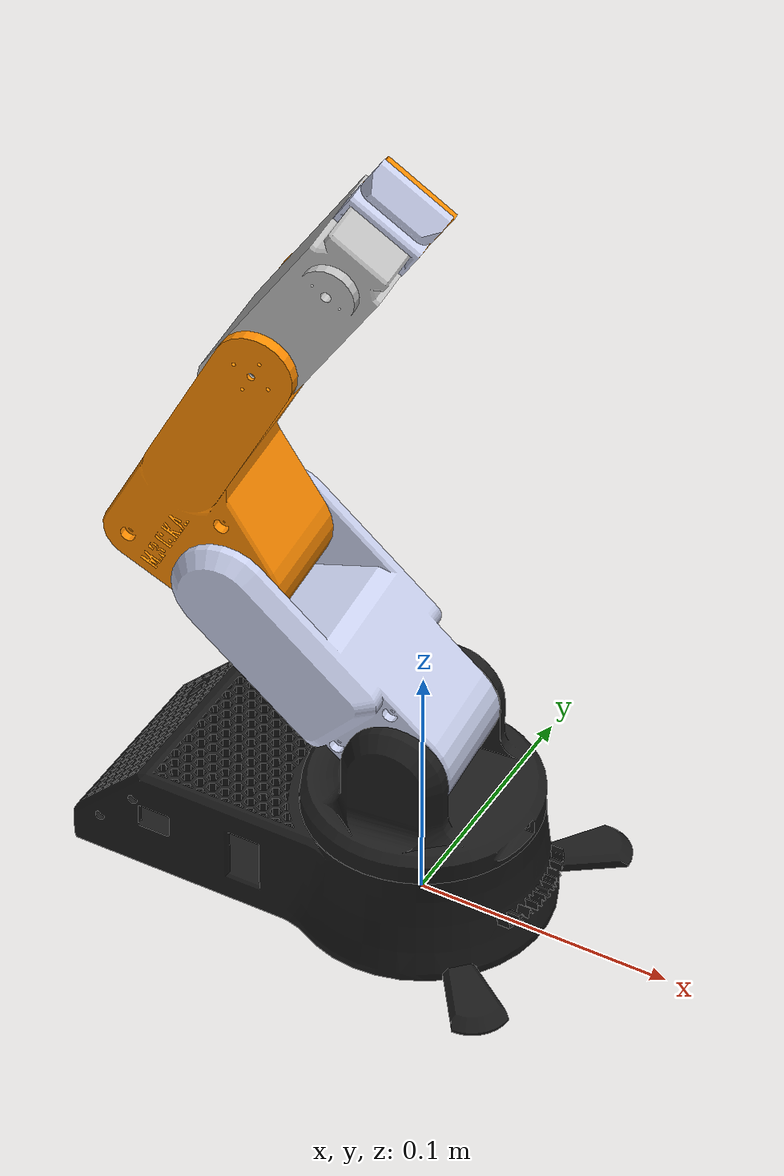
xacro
<?xml version="1.0" encoding="utf-8"?>
<robot
  xmlns:xacro="http://www.ros.org/wiki/xacro"
  name="roboflex_description">
  <xacro:arg name="udp_target_ip" default="255.255.255.255" />
  <xacro:arg name="udp_target_port" default="9999" />
  <xacro:arg name="udp_keepalive_ms" default="200" />
  <xacro:arg name="udp_command_change_epsilon_rad" default="0.0001" />
  <link
    name="base_link">
    <inertial>
      <origin
        xyz="-0.0198856207674204 -0.00141287834695654 0.0217127988880841"
        rpy="0 0 0" />
      <mass
        value="0.134010546144028" />
      <inertia
        ixx="0.000135168968359235"
        ixy="-6.91009827779041E-06"
        ixz="-4.27277665593471E-07"
        iyy="0.0002643923164745"
        iyz="2.33805748764974E-06"
        izz="0.000360228822623865" />
    </inertial>
    <visual>
      <origin
        xyz="0 0 0"
        rpy="0 0 0" />
      <geometry>
        <mesh
          filename="package://roboflex_description/meshes/base_link.STL" />
      </geometry>
      <material
        name="">
        <color
          rgba="0.101960784313725 0.101960784313725 0.101960784313725 1" />
      </material>
    </visual>
    <collision>
      <origin
        xyz="0 0 0"
        rpy="0 0 0" />
      <geometry>
        <mesh
          filename="package://roboflex_description/meshes/base_link.STL" />
      </geometry>
    </collision>
  </link>
  <link
    name="link_1">
    <inertial>
      <origin
        xyz="-0.000335711526938457 -0.00195685906883548 0.00400567773618168"
        rpy="0 0 0" />
      <mass
        value="0.0638354178670981" />
      <inertia
        ixx="2.04371827614838E-05"
        ixy="-1.48219694208089E-06"
        ixz="-8.60140187373712E-08"
        iyy="3.74765314270289E-05"
        iyz="6.85161603931178E-08"
        izz="3.90116575763446E-05" />
    </inertial>
    <visual>
      <origin
        xyz="0 0 0"
        rpy="0 0 0" />
      <geometry>
        <mesh
          filename="package://roboflex_description/meshes/link_1.STL" />
      </geometry>
      <material
        name="">
        <color
          rgba="0.109803921568627 0.109803921568627 0.109803921568627 1" />
      </material>
    </visual>
    <collision>
      <origin
        xyz="0 0 0"
        rpy="0 0 0" />
      <geometry>
        <mesh
          filename="package://roboflex_description/meshes/link_1.STL" />
      </geometry>
    </collision>
  </link>
  <joint
    name="joint_1"
    type="revolute">
    <origin
      xyz="0 0 0.0515"
      rpy="0 0 0" />
    <parent
      link="base_link" />
    <child
      link="link_1" />
    <axis
      xyz="0 0 1" />
    <limit
      lower="0.0"
      upper="1.57"
      effort="1000"
      velocity="1000" />
  </joint>
  <link
    name="link_2">
    <inertial>
      <origin
        xyz="-0.0293839678153532 -0.0391750047752968 0.0298252942272988"
        rpy="0 0 0" />
      <mass
        value="0.074807158508353" />
      <inertia
        ixx="4.73563804379614E-05"
        ixy="-5.15954984901729E-06"
        ixz="3.16484874429079E-05"
        iyy="8.81011489770943E-05"
        iyz="4.22015714258333E-06"
        izz="5.27508477785787E-05" />
    </inertial>
    <visual>
      <origin
        xyz="0 0 0"
        rpy="0 0 0" />
      <geometry>
        <mesh
          filename="package://roboflex_description/meshes/link_2.STL" />
      </geometry>
      <material
        name="">
        <color
          rgba="0.792156862745098 0.819607843137255 0.933333333333333 1" />
      </material>
    </visual>
    <collision>
      <origin
        xyz="0 0 0"
        rpy="0 0 0" />
      <geometry>
        <mesh
          filename="package://roboflex_description/meshes/link_2.STL" />
      </geometry>
    </collision>
  </link>
  <joint
    name="joint_2"
    type="revolute">
    <origin
      xyz="-0.0028235 0.032377 0.024"
      rpy="0 0 0" />
    <parent
      link="link_1" />
    <child
      link="link_2" />
    <axis
      xyz="0.087156 -0.99619 0" />
    <limit
      lower="-1.57"
      upper="0.523333"
      effort="1000"
      velocity="1000" />
  </joint>
  <link
    name="link_3">
    <inertial>
      <origin
        xyz="0.0227758078532524 -0.0328556506617019 0.0329637414290207"
        rpy="0 0 0" />
      <mass
        value="0.075817481422865" />
      <inertia
        ixx="4.12901217145756E-05"
        ixy="-4.85004213224955E-07"
        ixz="-2.63576710382377E-05"
        iyy="0.000109254231873346"
        iyz="4.03948740600622E-08"
        izz="7.74750349154183E-05" />
    </inertial>
    <visual>
      <origin
        xyz="0 0 0"
        rpy="0 0 0" />
      <geometry>
        <mesh
          filename="package://roboflex_description/meshes/link_3.STL" />
      </geometry>
      <material
        name="">
        <color
          rgba="1 0.549019607843137 0 1" />
      </material>
    </visual>
    <collision>
      <origin
        xyz="0 0 0"
        rpy="0 0 0" />
      <geometry>
        <mesh
          filename="package://roboflex_description/meshes/link_3.STL" />
      </geometry>
    </collision>
  </link>
  <joint
    name="joint_3"
    type="revolute">
    <origin
      xyz="-0.065843 -0.0047567 0.06118"
      rpy="0 0 0.087266" />
    <parent
      link="link_2" />
    <child
      link="link_3" />
    <axis
      xyz="0 1 0" />
    <limit
      lower="-1.57"
      upper="-0.174444"
      effort="1000"
      velocity="1000" />
  </joint>
  <link
    name="link_4">
    <inertial>
      <origin
        xyz="0.0238071448579615 -0.0316783222787854 0.00277894821163538"
        rpy="0 0 0" />
      <mass
        value="0.0774671928989127" />
      <inertia
        ixx="1.97841107265129E-05"
        ixy="-2.88927123181906E-06"
        ixz="-3.52790061750793E-06"
        iyy="4.11454125472179E-05"
        iyz="-3.23805423941019E-07"
        izz="4.92368498696563E-05" />
    </inertial>
    <visual>
      <origin
        xyz="0 0 0"
        rpy="0 0 0" />
      <geometry>
        <mesh
          filename="package://roboflex_description/meshes/gripper_body_link.STL" />
      </geometry>
      <material
        name="">
        <color
          rgba="0.752941176470588 0.752941176470588 0.752941176470588 1" />
      </material>
    </visual>
    <collision>
      <origin
        xyz="0 0 0"
        rpy="0 0 0" />
      <geometry>
        <mesh
          filename="package://roboflex_description/meshes/gripper_body_link.STL" />
      </geometry>
    </collision>
  </link>
  <joint
    name="joint_4"
    type="revolute">
    <origin
      xyz="0.085374 0.001 0.055591"
      rpy="0 0 0" />
    <parent
      link="link_3" />
    <child
      link="link_4" />
    <axis
      xyz="0 1 0" />
    <limit
      lower="-1.57"
      upper="0.523333"
      effort="1000"
      velocity="1000" />
  </joint>
  <link
    name="left_finger_link">
    <inertial>
      <origin
        xyz="0 0 0"
        rpy="0 0 0" />
      <mass
        value="0.00458928127195507" />
      <inertia
        ixx="4.2943383442101E-07"
        ixy="5.8453379790829E-09"
        ixz="2.32878269343507E-08"
        iyy="5.92189254891713E-07"
        iyz="6.84283162314224E-10"
        izz="2.3322889368892E-07" />
    </inertial>
    <visual>
      <origin
        xyz="0 0 0"
        rpy="0 0 0" />
      <geometry>
        <mesh
          filename="package://roboflex_description/meshes/gripper_left_link.STL" />
      </geometry>
      <material
        name="">
        <color
          rgba="1 0.545098039215686 0 1" />
      </material>
    </visual>
    <collision>
      <origin
        xyz="0 0 0"
        rpy="0 0 0" />
      <geometry>
        <mesh
          filename="package://roboflex_description/meshes/gripper_left_link.STL" />
      </geometry>
    </collision>
  </link>
  <link name="gripper_drive_link" />
  <link name="gripper_actuator_link" />
  <joint
    name="joint_gripper_mount"
    type="fixed">
    <origin
      xyz="0.0718 -0.03 0.008"
      rpy="0 0 0" />
    <parent
      link="link_4" />
    <child
      link="gripper_drive_link" />
  </joint>
  <joint
    name="joint_gripper"
    type="revolute">
    <origin
      xyz="0 0 0"
      rpy="0 0 0" />
    <parent
      link="gripper_drive_link" />
    <child
      link="gripper_actuator_link" />
    <axis
      xyz="0 1 0" />
    <limit
      lower="0.0"
      upper="0.523333"
      effort="1000"
      velocity="1000" />
  </joint>
  <joint
    name="joint_gripper_left_finger"
    type="prismatic">
    <origin
      xyz="0 0.001 0"
      rpy="0 -0.118 0" />
    <parent
      link="gripper_drive_link" />
    <child
      link="left_finger_link" />
    <axis
      xyz="0 1 0" />
    <limit
      lower="-0.006"
      upper="0.0"
      effort="1000"
      velocity="1000" />
    <mimic
      joint="joint_gripper"
      multiplier="0.011465"
      offset="0.0" />
  </joint>
  <link
    name="right_finger_link">
    <inertial>
      <origin
        xyz="0 0 0"
        rpy="0 0 0" />
      <mass
        value="0.00458915923311391" />
      <inertia
        ixx="4.29407135925781E-07"
        ixy="-5.83762822506971E-09"
        ixz="2.3286986618263E-08"
        iyy="5.92150639018827E-07"
        iyz="-6.83380621712635E-10"
        izz="2.33209275037086E-07" />
    </inertial>
    <visual>
      <origin
        xyz="0 0 0"
        rpy="0 0 0" />
      <geometry>
        <mesh
          filename="package://roboflex_description/meshes/gripper_right_link.STL" />
      </geometry>
      <material
        name="">
        <color
          rgba="0.796078431372549 0.823529411764706 0.937254901960784 1" />
      </material>
    </visual>
    <collision>
      <origin
        xyz="0 0 0"
        rpy="0 0 0" />
      <geometry>
        <mesh
          filename="package://roboflex_description/meshes/gripper_right_link.STL" />
      </geometry>
    </collision>
  </link>
  <joint
    name="joint_gripper_right_part"
    type="prismatic">
    <origin
      xyz="0 -0.001 0"
      rpy="0 -0.118 0" />
    <parent
      link="gripper_drive_link" />
    <child
      link="right_finger_link" />
    <axis
      xyz="0 1 0" />
    <limit
      lower="0.0"
      upper="0.006"
      effort="1000"
      velocity="1000" />
    <mimic
      joint="joint_gripper"
      multiplier="-0.011465"
      offset="0.0" />
  </joint>

  <ros2_control name="RealHardwareSystem" type="system">
        <hardware>
          <plugin>roboflex_control/RoboflexUdpHardware</plugin>
          <param name="udp_target_ip">$(arg udp_target_ip)</param>
          <param name="udp_target_port">$(arg udp_target_port)</param>
          <param name="udp_keepalive_ms">$(arg udp_keepalive_ms)</param>
          <param name="udp_command_change_epsilon_rad">$(arg udp_command_change_epsilon_rad)</param>
        </hardware>

        <joint name="joint_1">
            <command_interface name="position">
                <param name="min">0.0</param>
                <param name="max">1.57</param>
            </command_interface>
            <state_interface name="position">
                <param name="initial_value">0.0</param>
            </state_interface>

        </joint>

        <joint name="joint_2">
            <command_interface name="position">
                <param name="min">-1.57</param>
                <param name="max">0.523333</param>
            </command_interface>
            <state_interface name="position">
                <param name="initial_value">0.0</param>
            </state_interface>
        </joint>

        <joint name="joint_3">
            <command_interface name="position">
                <param name="min">-1.57</param>
                <param name="max">-0.174444</param>
            </command_interface>
            <state_interface name="position">
                <param name="initial_value">-0.174444</param>
            </state_interface>
        </joint>

        <joint name="joint_4">
            <command_interface name="position">
                <param name="min">-1.57</param>
                <param name="max">0.523333</param>
            </command_interface>
            <state_interface name="position">
                <param name="initial_value">0.0</param>
            </state_interface>
        </joint>

        <joint name="joint_gripper">
            <command_interface name="position">
                <param name="min">0</param>
                <param name="max">0.523333</param>
            </command_interface>
            <state_interface name="position">
                <param name="initial_value">0.0</param>
            </state_interface>
        </joint>

    </ros2_control>

</robot>
